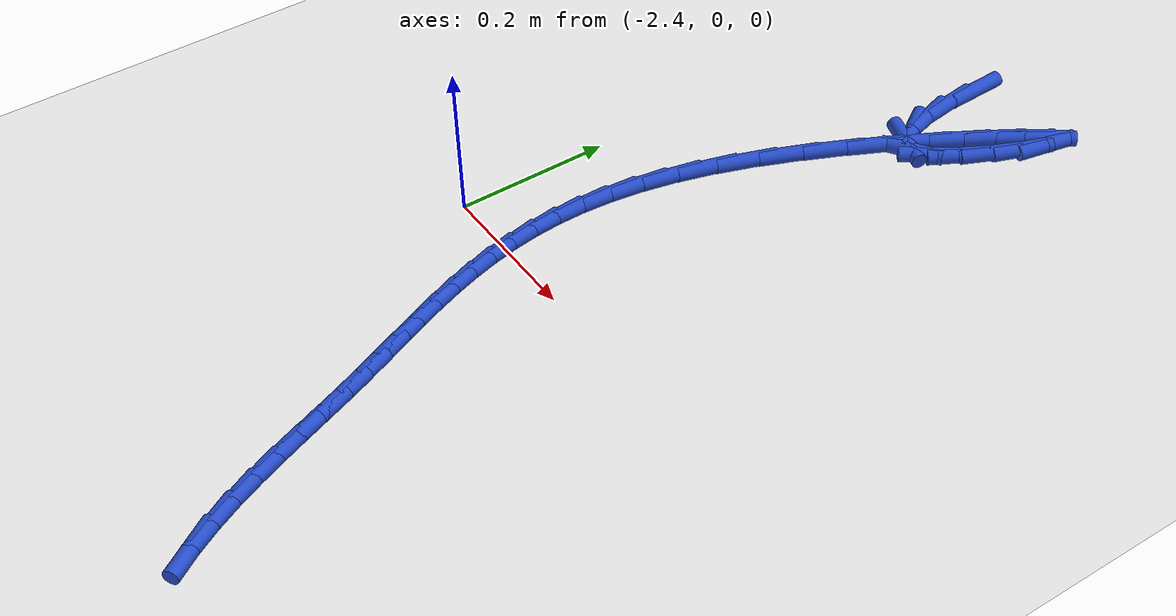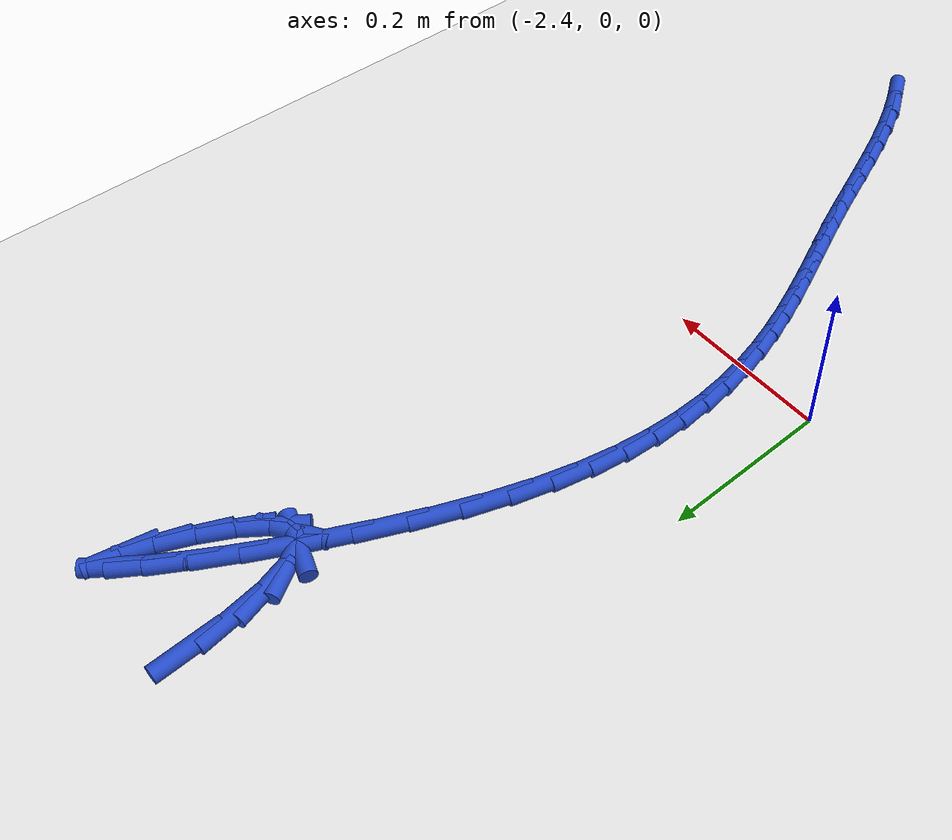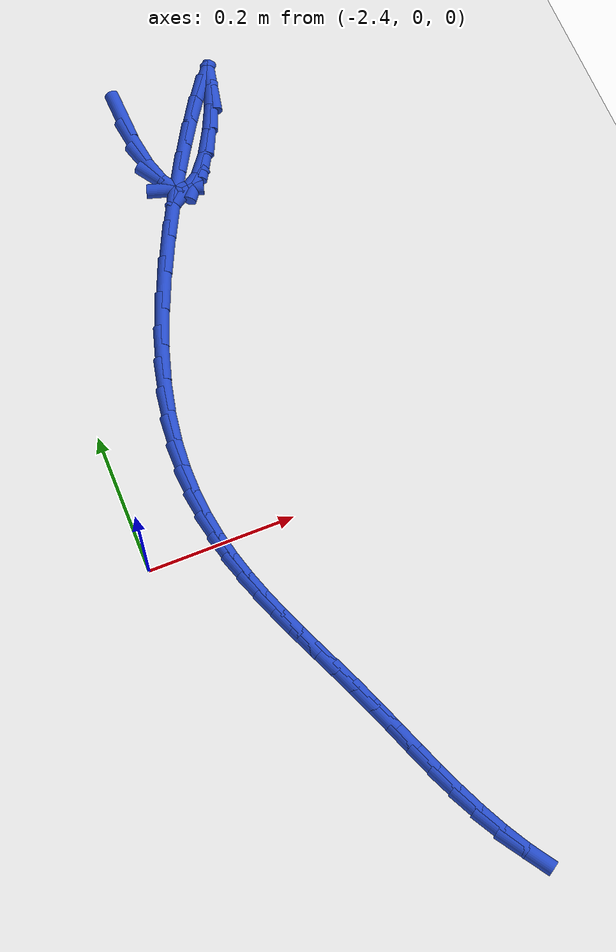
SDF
<sdf version="1.6">
 <world name="default">
  <model name="ground_plane">
   <static>1</static>
   <link name="link">
    <collision name="collision">
     <geometry><plane><normal>0 0 1</normal><size>100 100</size></plane></geometry>
     <surface><friction><ode><mu>100</mu><mu2>50</mu2></ode></friction></surface>
    </collision>
    <visual name="visual">
     <cast_shadows>0</cast_shadows>
     <geometry><plane><normal>0 0 1</normal><size>100 100</size></plane></geometry>
     <material>
      <script><uri>file://media/materials/scripts/gazebo.material</uri><name>Gazebo/WhiteGlow</name></script>
     </material>
    </visual>
   </link>
  </model>
  <model name="line">
   <link name="link_111">
    <pose>-2.204708700790558 0.6551826396823317 0.01 0 1.57 -1.5356347601986515</pose>
    <collision name="collision">
     <geometry><cylinder><radius>0.01</radius><length>0.08</length></cylinder></geometry>
    </collision>
    <visual name="visual">
     <material>
      <script><name>Gazebo/Blue</name><uri>file://media/materials/scripts/gazebo.material</uri></script>
     </material>
     <geometry><cylinder><radius>0.01</radius><length>0.08</length></cylinder></geometry>
    </visual>
   </link>
   <link name="link_112">
    <pose>-2.2030335999321657 0.6075621655527197 0.01 0 1.57 -1.4327651945533204</pose>
    <collision name="collision">
     <geometry><cylinder><radius>0.01</radius><length>0.08</length></cylinder></geometry>
    </collision>
    <visual name="visual">
     <material>
      <script><name>Gazebo/Blue</name><uri>file://media/materials/scripts/gazebo.material</uri></script>
     </material>
     <geometry><cylinder><radius>0.01</radius><length>0.08</length></cylinder></geometry>
    </visual>
   </link>
   <link name="link_113">
    <pose>-2.1972922977789344 0.566232405873987 0.01 0 1.57 -1.2816476685631835</pose>
    <collision name="collision">
     <geometry><cylinder><radius>0.01</radius><length>0.08</length></cylinder></geometry>
    </collision>
    <visual name="visual">
     <material>
      <script><name>Gazebo/Blue</name><uri>file://media/materials/scripts/gazebo.material</uri></script>
     </material>
     <geometry><cylinder><radius>0.01</radius><length>0.08</length></cylinder></geometry>
    </visual>
   </link>
   <link name="link_114">
    <pose>-2.1877316567905205 0.5340942708579366 0.01 0 1.57 -0.9908007730526</pose>
    <collision name="collision">
     <geometry><cylinder><radius>0.01</radius><length>0.08</length></cylinder></geometry>
    </collision>
    <visual name="visual">
     <material>
      <script><name>Gazebo/Blue</name><uri>file://media/materials/scripts/gazebo.material</uri></script>
     </material>
     <geometry><cylinder><radius>0.01</radius><length>0.08</length></cylinder></geometry>
    </visual>
   </link>
   <link name="link_115">
    <pose>-2.1745985394265803 0.514048670716372 0.01 0 1.57 -0.297828871578232</pose>
    <collision name="collision">
     <geometry><cylinder><radius>0.01</radius><length>0.08</length></cylinder></geometry>
    </collision>
    <visual name="visual">
     <material>
      <script><name>Gazebo/Blue</name><uri>file://media/materials/scripts/gazebo.material</uri></script>
     </material>
     <geometry><cylinder><radius>0.01</radius><length>0.08</length></cylinder></geometry>
    </visual>
   </link>
   <link name="link_116">
    <pose>-2.158139808146768 0.5089965156610964 0.01 0 1.57 0.575539429282387</pose>
    <collision name="collision">
     <geometry><cylinder><radius>0.01</radius><length>0.08</length></cylinder></geometry>
    </collision>
    <visual name="visual">
     <material>
      <script><name>Gazebo/Blue</name><uri>file://media/materials/scripts/gazebo.material</uri></script>
     </material>
     <geometry><cylinder><radius>0.01</radius><length>0.08</length></cylinder></geometry>
    </visual>
   </link>
   <link name="link_117">
    <pose>-2.138644152713646 0.5216455256316723 0.01 0 1.57 0.9259725405999097</pose>
    <collision name="collision">
     <geometry><cylinder><radius>0.01</radius><length>0.08</length></cylinder></geometry>
    </collision>
    <visual name="visual">
     <material>
      <script><name>Gazebo/Blue</name><uri>file://media/materials/scripts/gazebo.material</uri></script>
     </material>
     <geometry><cylinder><radius>0.01</radius><length>0.08</length></cylinder></geometry>
    </visual>
   </link>
   <link name="link_118">
    <pose>-2.117458596101057 0.5498152334981615 0.01 0 1.57 1.0592312059052331</pose>
    <collision name="collision">
     <geometry><cylinder><radius>0.01</radius><length>0.08</length></cylinder></geometry>
    </collision>
    <visual name="visual">
     <material>
      <script><name>Gazebo/Blue</name><uri>file://media/materials/scripts/gazebo.material</uri></script>
     </material>
     <geometry><cylinder><radius>0.01</radius><length>0.08</length></cylinder></geometry>
    </visual>
   </link>
   <link name="link_119">
    <pose>-2.0970449345344244 0.5861763020623878 0.01 0 1.57 1.1370471595797356</pose>
    <collision name="collision">
     <geometry><cylinder><radius>0.01</radius><length>0.08</length></cylinder></geometry>
    </collision>
    <visual name="visual">
     <material>
      <script><name>Gazebo/Blue</name><uri>file://media/materials/scripts/gazebo.material</uri></script>
     </material>
     <geometry><cylinder><radius>0.01</radius><length>0.08</length></cylinder></geometry>
    </visual>
   </link>
   <link name="link_120">
    <pose>-2.0799180891030438 0.6231540231316093 0.01 0 1.57 1.2100489900851161</pose>
    <collision name="collision">
     <geometry><cylinder><radius>0.01</radius><length>0.08</length></cylinder></geometry>
    </collision>
    <visual name="visual">
     <material>
      <script><name>Gazebo/Blue</name><uri>file://media/materials/scripts/gazebo.material</uri></script>
     </material>
     <geometry><cylinder><radius>0.01</radius><length>0.08</length></cylinder></geometry>
    </visual>
   </link>
   <link name="link_121">
    <pose>-2.0685929808962062 0.6531736885130833 0.01 0 1.57 1.3676111306710363</pose>
    <collision name="collision">
     <geometry><cylinder><radius>0.01</radius><length>0.08</length></cylinder></geometry>
    </collision>
    <visual name="visual">
     <material>
      <script><name>Gazebo/Blue</name><uri>file://media/materials/scripts/gazebo.material</uri></script>
     </material>
     <geometry><cylinder><radius>0.01</radius><length>0.08</length></cylinder></geometry>
    </visual>
   </link>
   <link name="link_124">
    <pose>-2.0803581647931 0.6614613564897835 0.01 0 1.57 0.918964022365787</pose>
    <collision name="collision">
     <geometry><cylinder><radius>0.01</radius><length>0.08</length></cylinder></geometry>
    </collision>
    <visual name="visual">
     <material>
      <script><name>Gazebo/Blue</name><uri>file://media/materials/scripts/gazebo.material</uri></script>
     </material>
     <geometry><cylinder><radius>0.01</radius><length>0.08</length></cylinder></geometry>
    </visual>
   </link>
   <link name="link_125">
    <pose>-2.09656268855706 0.6402262218580093 0.01 0 1.57 0.9803543944942406</pose>
    <collision name="collision">
     <geometry><cylinder><radius>0.01</radius><length>0.08</length></cylinder></geometry>
    </collision>
    <visual name="visual">
     <material>
      <script><name>Gazebo/Blue</name><uri>file://media/materials/scripts/gazebo.material</uri></script>
     </material>
     <geometry><cylinder><radius>0.01</radius><length>0.08</length></cylinder></geometry>
    </visual>
   </link>
   <link name="link_126">
    <pose>-2.1169627825230926 0.6097872198635178 0.01 0 1.57 1.01790698449592</pose>
    <collision name="collision">
     <geometry><cylinder><radius>0.01</radius><length>0.08</length></cylinder></geometry>
    </collision>
    <visual name="visual">
     <material>
      <script><name>Gazebo/Blue</name><uri>file://media/materials/scripts/gazebo.material</uri></script>
     </material>
     <geometry><cylinder><radius>0.01</radius><length>0.08</length></cylinder></geometry>
    </visual>
   </link>
   <link name="link_127">
    <pose>-2.1403907459239893 0.5718218501790873 0.01 0 1.57 1.0473350150746992</pose>
    <collision name="collision">
     <geometry><cylinder><radius>0.01</radius><length>0.08</length></cylinder></geometry>
    </collision>
    <visual name="visual">
     <material>
      <script><name>Gazebo/Blue</name><uri>file://media/materials/scripts/gazebo.material</uri></script>
     </material>
     <geometry><cylinder><radius>0.01</radius><length>0.08</length></cylinder></geometry>
    </visual>
   </link>
   <link name="link_128">
    <pose>-2.1656788779925393 0.5280076124774945 0.01 0 1.57 1.074560547272194</pose>
    <collision name="collision">
     <geometry><cylinder><radius>0.01</radius><length>0.08</length></cylinder></geometry>
    </collision>
    <visual name="visual">
     <material>
      <script><name>Gazebo/Blue</name><uri>file://media/materials/scripts/gazebo.material</uri></script>
     </material>
     <geometry><cylinder><radius>0.01</radius><length>0.08</length></cylinder></geometry>
    </visual>
   </link>
   <link name="link_129">
    <pose>-2.191659477961537 0.48002200643151716 0.01 0 1.57 1.1029478777755743</pose>
    <collision name="collision">
     <geometry><cylinder><radius>0.01</radius><length>0.08</length></cylinder></geometry>
    </collision>
    <visual name="visual">
     <material>
      <script><name>Gazebo/Blue</name><uri>file://media/materials/scripts/gazebo.material</uri></script>
     </material>
     <geometry><cylinder><radius>0.01</radius><length>0.08</length></cylinder></geometry>
    </visual>
   </link>
   <link name="link_130">
    <pose>-2.2171648450637713 0.42954253171393236 0.01 0 1.57 1.135380522128656</pose>
    <collision name="collision">
     <geometry><cylinder><radius>0.01</radius><length>0.08</length></cylinder></geometry>
    </collision>
    <visual name="visual">
     <material>
      <script><name>Gazebo/Blue</name><uri>file://media/materials/scripts/gazebo.material</uri></script>
     </material>
     <geometry><cylinder><radius>0.01</radius><length>0.08</length></cylinder></geometry>
    </visual>
   </link>
   <link name="link_131">
    <pose>-2.241027278532035 0.3782466879975178 0.01 0 1.57 1.175374610402383</pose>
    <collision name="collision">
     <geometry><cylinder><radius>0.01</radius><length>0.08</length></cylinder></geometry>
    </collision>
    <visual name="visual">
     <material>
      <script><name>Gazebo/Blue</name><uri>file://media/materials/scripts/gazebo.material</uri></script>
     </material>
     <geometry><cylinder><radius>0.01</radius><length>0.08</length></cylinder></geometry>
    </visual>
   </link>
   <link name="link_132">
    <pose>-2.262079077599118 0.3278119749550505 0.01 0 1.57 1.227258740042573</pose>
    <collision name="collision">
     <geometry><cylinder><radius>0.01</radius><length>0.08</length></cylinder></geometry>
    </collision>
    <visual name="visual">
     <material>
      <script><name>Gazebo/Blue</name><uri>file://media/materials/scripts/gazebo.material</uri></script>
     </material>
     <geometry><cylinder><radius>0.01</radius><length>0.08</length></cylinder></geometry>
    </visual>
   </link>
   <link name="link_133">
    <pose>-2.2792659822197727 0.27976656938428474 0.01 0 1.57 1.2879487325858618</pose>
    <collision name="collision">
     <geometry><cylinder><radius>0.01</radius><length>0.08</length></cylinder></geometry>
    </collision>
    <visual name="visual">
     <material>
      <script><name>Gazebo/Blue</name><uri>file://media/materials/scripts/gazebo.material</uri></script>
     </material>
     <geometry><cylinder><radius>0.01</radius><length>0.08</length></cylinder></geometry>
    </visual>
   </link>
   <link name="link_134">
    <pose>-2.2924368088757054 0.23444992166233894 0.01 0 1.57 1.3539013147575227</pose>
    <collision name="collision">
     <geometry><cylinder><radius>0.01</radius><length>0.08</length></cylinder></geometry>
    </collision>
    <visual name="visual">
     <material>
      <script><name>Gazebo/Blue</name><uri>file://media/materials/scripts/gazebo.material</uri></script>
     </material>
     <geometry><cylinder><radius>0.01</radius><length>0.08</length></cylinder></geometry>
    </visual>
   </link>
   <link name="link_135">
    <pose>-2.301871906768418 0.19163345240353938 0.01 0 1.57 1.4243158251484722</pose>
    <collision name="collision">
     <geometry><cylinder><radius>0.01</radius><length>0.08</length></cylinder></geometry>
    </collision>
    <visual name="visual">
     <material>
      <script><name>Gazebo/Blue</name><uri>file://media/materials/scripts/gazebo.material</uri></script>
     </material>
     <geometry><cylinder><radius>0.01</radius><length>0.08</length></cylinder></geometry>
    </visual>
   </link>
   <link name="link_136">
    <pose>-2.307854304907324 0.1510850547709099 0.01 0 1.57 1.4978914984503744</pose>
    <collision name="collision">
     <geometry><cylinder><radius>0.01</radius><length>0.08</length></cylinder></geometry>
    </collision>
    <visual name="visual">
     <material>
      <script><name>Gazebo/Blue</name><uri>file://media/materials/scripts/gazebo.material</uri></script>
     </material>
     <geometry><cylinder><radius>0.01</radius><length>0.08</length></cylinder></geometry>
    </visual>
   </link>
   <link name="link_137">
    <pose>-2.3106670323018412 0.11257262192747448 0.01 0 1.57 -1.5687827852508678</pose>
    <collision name="collision">
     <geometry><cylinder><radius>0.01</radius><length>0.08</length></cylinder></geometry>
    </collision>
    <visual name="visual">
     <material>
      <script><name>Gazebo/Blue</name><uri>file://media/materials/scripts/gazebo.material</uri></script>
     </material>
     <geometry><cylinder><radius>0.01</radius><length>0.08</length></cylinder></geometry>
    </visual>
   </link>
   <link name="link_138">
    <pose>-2.310593117961384 0.07586404703625711 0.01 0 1.57 -1.4947404381292446</pose>
    <collision name="collision">
     <geometry><cylinder><radius>0.01</radius><length>0.08</length></cylinder></geometry>
    </collision>
    <visual name="visual">
     <material>
      <script><name>Gazebo/Blue</name><uri>file://media/materials/scripts/gazebo.material</uri></script>
     </material>
     <geometry><cylinder><radius>0.01</radius><length>0.08</length></cylinder></geometry>
    </visual>
   </link>
   <link name="link_139">
    <pose>-2.3079155908953695 0.04072722326028175 0.01 0 1.57 -1.4239750466662058</pose>
    <collision name="collision">
     <geometry><cylinder><radius>0.01</radius><length>0.08</length></cylinder></geometry>
    </collision>
    <visual name="visual">
     <material>
      <script><name>Gazebo/Blue</name><uri>file://media/materials/scripts/gazebo.material</uri></script>
     </material>
     <geometry><cylinder><radius>0.01</radius><length>0.08</length></cylinder></geometry>
    </visual>
   </link>
   <link name="link_140">
    <pose>-2.3029174801132126 0.006930043762571413 0.01 0 1.57 -1.3588040279641782</pose>
    <collision name="collision">
     <geometry><cylinder><radius>0.01</radius><length>0.08</length></cylinder></geometry>
    </collision>
    <visual name="visual">
     <material>
      <script><name>Gazebo/Blue</name><uri>file://media/materials/scripts/gazebo.material</uri></script>
     </material>
     <geometry><cylinder><radius>0.01</radius><length>0.08</length></cylinder></geometry>
    </visual>
   </link>
   <link name="link_141">
    <pose>-2.2958818146243307 -0.02575959829384799 0.01 0 1.57 -1.3012241214122584</pose>
    <collision name="collision">
     <geometry><cylinder><radius>0.01</radius><length>0.08</length></cylinder></geometry>
    </collision>
    <visual name="visual">
     <material>
      <script><name>Gazebo/Blue</name><uri>file://media/materials/scripts/gazebo.material</uri></script>
     </material>
     <geometry><cylinder><radius>0.01</radius><length>0.08</length></cylinder></geometry>
    </visual>
   </link>
   <link name="link_142">
    <pose>-2.287091623438139 -0.05757380974595344 0.01 0 1.57 -1.2527636687892028</pose>
    <collision name="collision">
     <geometry><cylinder><radius>0.01</radius><length>0.08</length></cylinder></geometry>
    </collision>
    <visual name="visual">
     <material>
      <script><name>Gazebo/Blue</name><uri>file://media/materials/scripts/gazebo.material</uri></script>
     </material>
     <geometry><cylinder><radius>0.01</radius><length>0.08</length></cylinder></geometry>
    </visual>
   </link>
   <link name="link_143">
    <pose>-2.2768299355640527 -0.08874469743072103 0.01 0 1.57 -1.2144425582864906</pose>
    <collision name="collision">
     <geometry><cylinder><radius>0.01</radius><length>0.08</length></cylinder></geometry>
    </collision>
    <visual name="visual">
     <material>
      <script><name>Gazebo/Blue</name><uri>file://media/materials/scripts/gazebo.material</uri></script>
     </material>
     <geometry><cylinder><radius>0.01</radius><length>0.08</length></cylinder></geometry>
    </visual>
   </link>
   <link name="link_144">
    <pose>-2.2653797800114885 -0.11950436818512672 0.01 0 1.57 -1.1868169839551235</pose>
    <collision name="collision">
     <geometry><cylinder><radius>0.01</radius><length>0.08</length></cylinder></geometry>
    </collision>
    <visual name="visual">
     <material>
      <script><name>Gazebo/Blue</name><uri>file://media/materials/scripts/gazebo.material</uri></script>
     </material>
     <geometry><cylinder><radius>0.01</radius><length>0.08</length></cylinder></geometry>
    </visual>
   </link>
   <link name="link_145">
    <pose>-2.2530241857898616 -0.15008492884614655 0.01 0 1.57 -1.1700670044027948</pose>
    <collision name="collision">
     <geometry><cylinder><radius>0.01</radius><length>0.08</length></cylinder></geometry>
    </collision>
    <visual name="visual">
     <material>
      <script><name>Gazebo/Blue</name><uri>file://media/materials/scripts/gazebo.material</uri></script>
     </material>
     <geometry><cylinder><radius>0.01</radius><length>0.08</length></cylinder></geometry>
    </visual>
   </link>
   <link name="link_146">
    <pose>-2.2400461819085886 -0.1807184862507566 0.01 0 1.57 -1.1640880836795284</pose>
    <collision name="collision">
     <geometry><cylinder><radius>0.01</radius><length>0.08</length></cylinder></geometry>
    </collision>
    <visual name="visual">
     <material>
      <script><name>Gazebo/Blue</name><uri>file://media/materials/scripts/gazebo.material</uri></script>
     </material>
     <geometry><cylinder><radius>0.01</radius><length>0.08</length></cylinder></geometry>
    </visual>
   </link>
   <link name="link_147">
    <pose>-2.2267287973770853 -0.2116371472359329 0.01 0 1.57 -1.1685622383191745</pose>
    <collision name="collision">
     <geometry><cylinder><radius>0.01</radius><length>0.08</length></cylinder></geometry>
    </collision>
    <visual name="visual">
     <material>
      <script><name>Gazebo/Blue</name><uri>file://media/materials/scripts/gazebo.material</uri></script>
     </material>
     <geometry><cylinder><radius>0.01</radius><length>0.08</length></cylinder></geometry>
    </visual>
   </link>
   <link name="link_148">
    <pose>-2.213355061204768 -0.2430730186386515 0.01 0 1.57 -1.1829165690441796</pose>
    <collision name="collision">
     <geometry><cylinder><radius>0.01</radius><length>0.08</length></cylinder></geometry>
    </collision>
    <visual name="visual">
     <material>
      <script><name>Gazebo/Blue</name><uri>file://media/materials/scripts/gazebo.material</uri></script>
     </material>
     <geometry><cylinder><radius>0.01</radius><length>0.08</length></cylinder></geometry>
    </visual>
   </link>
   <link name="link_149">
    <pose>-2.200205711708783 -0.27525617800104296 0.01 0 1.57 -1.1992089923962999</pose>
    <collision name="collision">
     <geometry><cylinder><radius>0.01</radius><length>0.08</length></cylinder></geometry>
    </collision>
    <visual name="visual">
     <material>
      <script><name>Gazebo/Blue</name><uri>file://media/materials/scripts/gazebo.material</uri></script>
     </material>
     <geometry><cylinder><radius>0.01</radius><length>0.08</length></cylinder></geometry>
    </visual>
   </link>
   <link name="link_150">
    <pose>-2.187354744870346 -0.3082335524863003 0.01 0 1.57 -1.2045259221192788</pose>
    <collision name="collision">
     <geometry><cylinder><radius>0.01</radius><length>0.08</length></cylinder></geometry>
    </collision>
    <visual name="visual">
     <material>
      <script><name>Gazebo/Blue</name><uri>file://media/materials/scripts/gazebo.material</uri></script>
     </material>
     <geometry><cylinder><radius>0.01</radius><length>0.08</length></cylinder></geometry>
    </visual>
   </link>
   <link name="link_151">
    <pose>-2.1745078398901097 -0.34172578215429184 0.01 0 1.57 -1.198051510476181</pose>
    <collision name="collision">
     <geometry><cylinder><radius>0.01</radius><length>0.08</length></cylinder></geometry>
    </collision>
    <visual name="visual">
     <material>
      <script><name>Gazebo/Blue</name><uri>file://media/materials/scripts/gazebo.material</uri></script>
     </material>
     <geometry><cylinder><radius>0.01</radius><length>0.08</length></cylinder></geometry>
    </visual>
   </link>
   <link name="link_152">
    <pose>-2.161332652240826 -0.3754198223329115 0.01 0 1.57 -1.1799957845923814</pose>
    <collision name="collision">
     <geometry><cylinder><radius>0.01</radius><length>0.08</length></cylinder></geometry>
    </collision>
    <visual name="visual">
     <material>
      <script><name>Gazebo/Blue</name><uri>file://media/materials/scripts/gazebo.material</uri></script>
     </material>
     <geometry><cylinder><radius>0.01</radius><length>0.08</length></cylinder></geometry>
    </visual>
   </link>
   <link name="link_153">
    <pose>-2.14749683739525 -0.40900262835005347 0.01 0 1.57 -1.1502659521412928</pose>
    <collision name="collision">
     <geometry><cylinder><radius>0.01</radius><length>0.08</length></cylinder></geometry>
    </collision>
    <visual name="visual">
     <material>
      <script><name>Gazebo/Blue</name><uri>file://media/materials/scripts/gazebo.material</uri></script>
     </material>
     <geometry><cylinder><radius>0.01</radius><length>0.08</length></cylinder></geometry>
    </visual>
   </link>
   <link name="link_154">
    <pose>-2.132668050826132 -0.4421611555336117 0.01 0 1.57 -1.108543814502635</pose>
    <collision name="collision">
     <geometry><cylinder><radius>0.01</radius><length>0.08</length></cylinder></geometry>
    </collision>
    <visual name="visual">
     <material>
      <script><name>Gazebo/Blue</name><uri>file://media/materials/scripts/gazebo.material</uri></script>
     </material>
     <geometry><cylinder><radius>0.01</radius><length>0.08</length></cylinder></geometry>
    </visual>
   </link>
   <link name="link_155">
    <pose>-2.116513948006227 -0.4745823592114801 0.01 0 1.57 -1.054404258741772</pose>
    <collision name="collision">
     <geometry><cylinder><radius>0.01</radius><length>0.08</length></cylinder></geometry>
    </collision>
    <visual name="visual">
     <material>
      <script><name>Gazebo/Blue</name><uri>file://media/materials/scripts/gazebo.material</uri></script>
     </material>
     <geometry><cylinder><radius>0.01</radius><length>0.08</length></cylinder></geometry>
    </visual>
   </link>
   <link name="link_156">
    <pose>-2.098702184408287 -0.5059531947115536 0.01 0 1.57 -0.9874959821421748</pose>
    <collision name="collision">
     <geometry><cylinder><radius>0.01</radius><length>0.08</length></cylinder></geometry>
    </collision>
    <visual name="visual">
     <material>
      <script><name>Gazebo/Blue</name><uri>file://media/materials/scripts/gazebo.material</uri></script>
     </material>
     <geometry><cylinder><radius>0.01</radius><length>0.08</length></cylinder></geometry>
    </visual>
   </link>
  </model>
 </world>
</sdf>
